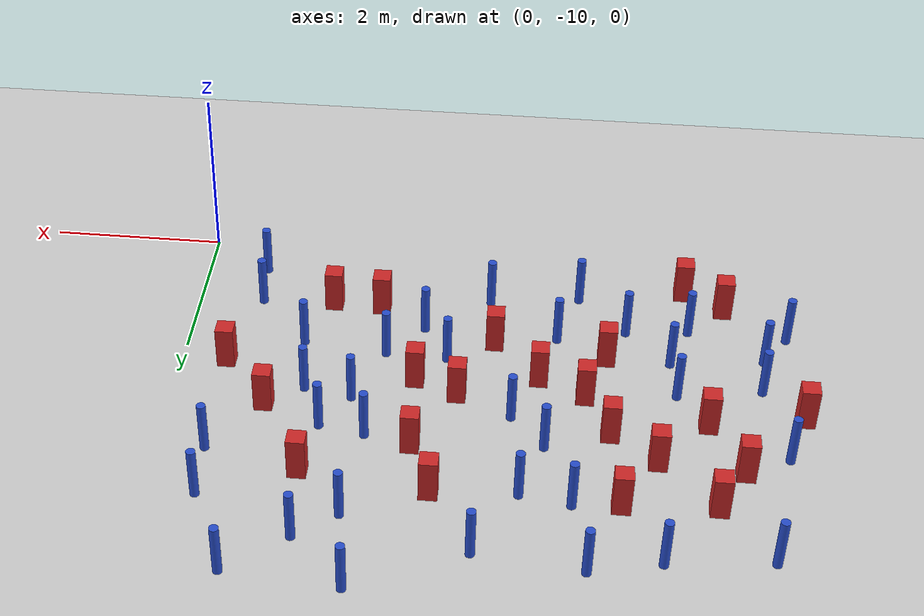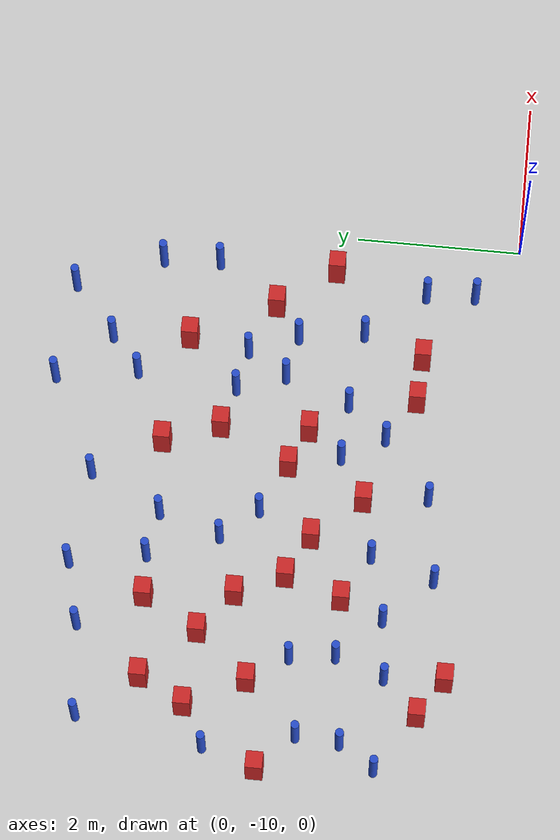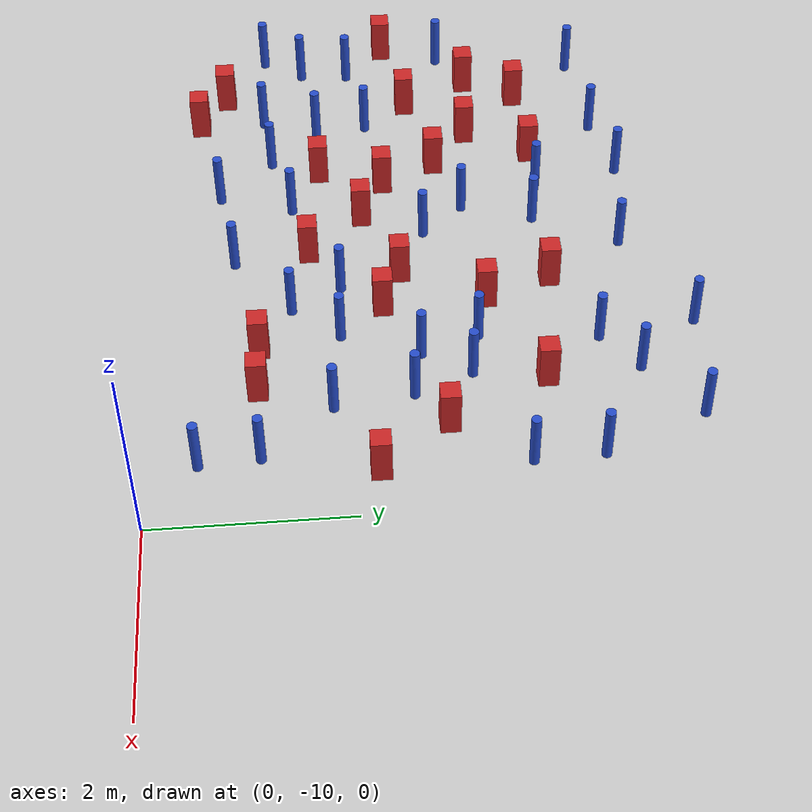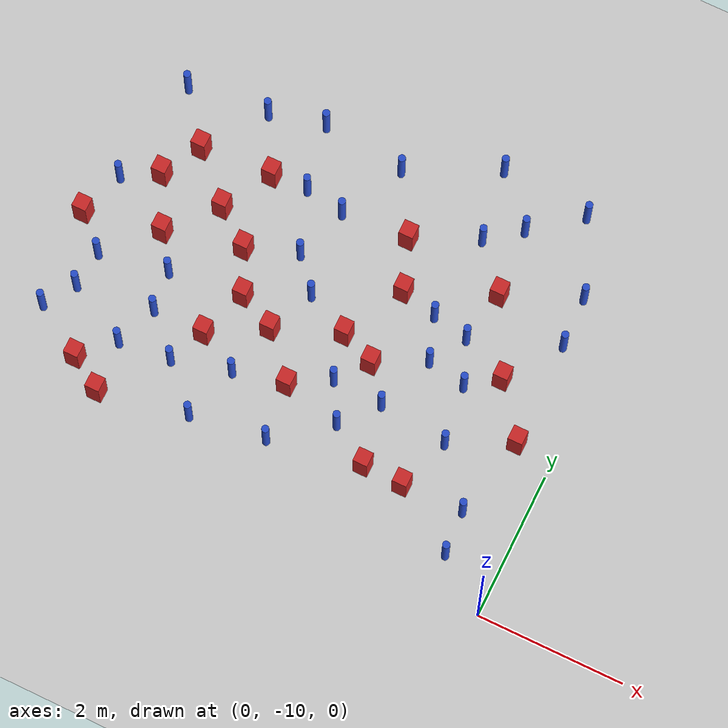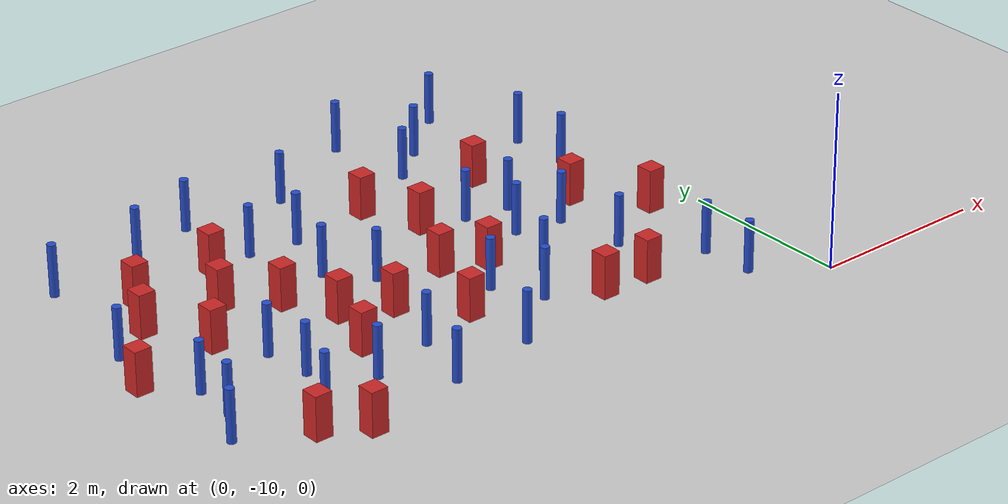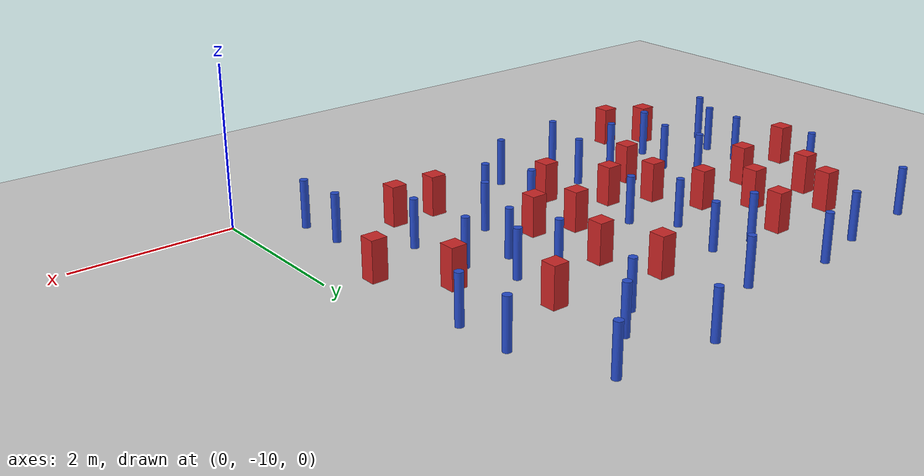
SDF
<sdf version="1.6">
 <world name="default">
  <model name="ground_plane">
   <static>1</static>
   <link name="link">
    <collision name="collision">
     <geometry><plane><normal>0 0 1</normal><size>100 100</size></plane></geometry>
     <surface><friction><ode><mu>100</mu><mu2>50</mu2></ode></friction></surface>
    </collision>
    <visual name="visual">
     <cast_shadows>0</cast_shadows>
     <geometry><plane><normal>0 0 1</normal><size>100 100</size></plane></geometry>
     <material>
      <ambient>1.0 1.0 1.0 1.0</ambient>
      <diffuse>0.8 0.8 0.8 1.0</diffuse>
      <specular>0.01 0.01 0.01 1.000000</specular>
     </material>
    </visual>
   </link>
  </model>
  <model name="square_post_obstacle4">
   <static>true</static>
   <pose>-2.685615217 -6.57738315095 1.91545236811e-07 -7.35059704564e-06 1.12565212e-07 2.39332434364e-05</pose>
   <link name="link">
    <pose>0 0 0.25 0 -0 0</pose>
    <inertial>
     <mass>100</mass>
     <inertia>
      <ixx>0.166667</ixx>
      <ixy>0</ixy>
      <ixz>0</ixz>
      <iyy>0.166667</iyy>
      <iyz>0</iyz>
      <izz>0.166667</izz>
     </inertia>
    </inertial>
    <collision name="collision"><geometry><box><size>.2 .2 .5</size></box></geometry></collision>
    <visual name="visual">
     <geometry><box><size>.2 .2 .5</size></box></geometry>
     <material>
      <script><name>Gazebo/Red</name><uri>file://media/materials/scripts/gazebo.material</uri></script>
     </material>
    </visual>
   </link>
  </model>
  <model name="pole_obstacle7">
   <static>true</static>
   <pose>-5.67325957505 -8.79444779382 7.38925637345e-09 -8.471706928e-08 1.24976765081e-08 -1.74513093015e-07</pose>
   <link name="link">
    <pose>0 0 0.3 0 -0 0</pose>
    <inertial>
     <mass>1</mass>
     <inertia><ixx>0.145833</ixx><ixy>0</ixy><ixz>0</ixz><iyy>0.145833</iyy><iyz>0</iyz><izz>0.125</izz></inertia>
    </inertial>
    <collision name="collision">
     <geometry><cylinder><radius>0.05</radius><length>.6</length></cylinder></geometry>
    </collision>
    <visual name="visual">
     <geometry><cylinder><radius>0.05</radius><length>.6</length></cylinder></geometry>
     <material>
      <script><name>Gazebo/Blue</name><uri>file://media/materials/scripts/gazebo.material</uri></script>
     </material>
    </visual>
   </link>
  </model>
  <model name="pole_obstacle9">
   <static>true</static>
   <pose>-3.39660632281 -9.13306367596 7.38925637345e-09 -8.47170692793e-08 1.24976764408e-08 -1.74513093041e-07</pose>
   <link name="link">
    <pose>0 0 0.3 0 -0 0</pose>
    <inertial>
     <mass>1</mass>
     <inertia><ixx>0.145833</ixx><ixy>0</ixy><ixz>0</ixz><iyy>0.145833</iyy><iyz>0</iyz><izz>0.125</izz></inertia>
    </inertial>
    <collision name="collision">
     <geometry><cylinder><radius>0.05</radius><length>.6</length></cylinder></geometry>
    </collision>
    <visual name="visual">
     <geometry><cylinder><radius>0.05</radius><length>.6</length></cylinder></geometry>
     <material>
      <script><name>Gazebo/Blue</name><uri>file://media/materials/scripts/gazebo.material</uri></script>
     </material>
    </visual>
   </link>
  </model>
  <model name="square_post_obstacle17">
   <static>true</static>
   <pose>-5.90727312958 -5.95352216469 1.91545236811e-07 -7.35059704564e-06 1.12565212e-07 2.39332434364e-05</pose>
   <link name="link">
    <pose>0 0 0.25 0 -0 0</pose>
    <inertial>
     <mass>100</mass>
     <inertia>
      <ixx>0.166667</ixx>
      <ixy>0</ixy>
      <ixz>0</ixz>
      <iyy>0.166667</iyy>
      <iyz>0</iyz>
      <izz>0.166667</izz>
     </inertia>
    </inertial>
    <collision name="collision"><geometry><box><size>.2 .2 .5</size></box></geometry></collision>
    <visual name="visual">
     <geometry><box><size>.2 .2 .5</size></box></geometry>
     <material>
      <script><name>Gazebo/Red</name><uri>file://media/materials/scripts/gazebo.material</uri></script>
     </material>
    </visual>
   </link>
  </model>
  <model name="square_post_obstacle21">
   <static>true</static>
   <pose>-6.20504115553 -6.49994313246 1.91545236811e-07 -7.35059704564e-06 1.12565212e-07 2.39332434364e-05</pose>
   <link name="link">
    <pose>0 0 0.25 0 -0 0</pose>
    <inertial>
     <mass>100</mass>
     <inertia>
      <ixx>0.166667</ixx>
      <ixy>0</ixy>
      <ixz>0</ixz>
      <iyy>0.166667</iyy>
      <iyz>0</iyz>
      <izz>0.166667</izz>
     </inertia>
    </inertial>
    <collision name="collision"><geometry><box><size>.2 .2 .5</size></box></geometry></collision>
    <visual name="visual">
     <geometry><box><size>.2 .2 .5</size></box></geometry>
     <material>
      <script><name>Gazebo/Red</name><uri>file://media/materials/scripts/gazebo.material</uri></script>
     </material>
    </visual>
   </link>
  </model>
  <model name="pole_obstacle17">
   <static>true</static>
   <pose>-3.86469299405 -5.96399672373 7.38925637345e-09 -8.47170692794e-08 1.24976764468e-08 -1.7451309304e-07</pose>
   <link name="link">
    <pose>0 0 0.3 0 -0 0</pose>
    <inertial>
     <mass>1</mass>
     <inertia><ixx>0.145833</ixx><ixy>0</ixy><ixz>0</ixz><iyy>0.145833</iyy><iyz>0</iyz><izz>0.125</izz></inertia>
    </inertial>
    <collision name="collision">
     <geometry><cylinder><radius>0.05</radius><length>.6</length></cylinder></geometry>
    </collision>
    <visual name="visual">
     <geometry><cylinder><radius>0.05</radius><length>.6</length></cylinder></geometry>
     <material>
      <script><name>Gazebo/Blue</name><uri>file://media/materials/scripts/gazebo.material</uri></script>
     </material>
    </visual>
   </link>
  </model>
  <model name="square_post_obstacle32">
   <static>true</static>
   <pose>-4.79660559001 -6.95460311678 1.91545236811e-07 -7.35059704564e-06 1.12565212e-07 2.39332434364e-05</pose>
   <link name="link">
    <pose>0 0 0.25 0 -0 0</pose>
    <inertial>
     <mass>100</mass>
     <inertia>
      <ixx>0.166667</ixx>
      <ixy>0</ixy>
      <ixz>0</ixz>
      <iyy>0.166667</iyy>
      <iyz>0</iyz>
      <izz>0.166667</izz>
     </inertia>
    </inertial>
    <collision name="collision"><geometry><box><size>.2 .2 .5</size></box></geometry></collision>
    <visual name="visual">
     <geometry><box><size>.2 .2 .5</size></box></geometry>
     <material>
      <script><name>Gazebo/Red</name><uri>file://media/materials/scripts/gazebo.material</uri></script>
     </material>
    </visual>
   </link>
  </model>
  <model name="square_post_obstacle33">
   <static>true</static>
   <pose>-4.74469643755 -8.20914428966 1.91545236811e-07 -7.35059704564e-06 1.12565212e-07 2.39332434364e-05</pose>
   <link name="link">
    <pose>0 0 0.25 0 -0 0</pose>
    <inertial>
     <mass>100</mass>
     <inertia>
      <ixx>0.166667</ixx>
      <ixy>0</ixy>
      <ixz>0</ixz>
      <iyy>0.166667</iyy>
      <iyz>0</iyz>
      <izz>0.166667</izz>
     </inertia>
    </inertial>
    <collision name="collision"><geometry><box><size>.2 .2 .5</size></box></geometry></collision>
    <visual name="visual">
     <geometry><box><size>.2 .2 .5</size></box></geometry>
     <material>
      <script><name>Gazebo/Red</name><uri>file://media/materials/scripts/gazebo.material</uri></script>
     </material>
    </visual>
   </link>
  </model>
  <model name="pole_obstacle30">
   <static>true</static>
   <pose>-2.67272875391 -8.56200694181 7.38925637345e-09 -8.47170692793e-08 1.24976764408e-08 -1.74513093041e-07</pose>
   <link name="link">
    <pose>0 0 0.3 0 -0 0</pose>
    <inertial>
     <mass>1</mass>
     <inertia><ixx>0.145833</ixx><ixy>0</ixy><ixz>0</ixz><iyy>0.145833</iyy><iyz>0</iyz><izz>0.125</izz></inertia>
    </inertial>
    <collision name="collision">
     <geometry><cylinder><radius>0.05</radius><length>.6</length></cylinder></geometry>
    </collision>
    <visual name="visual">
     <geometry><cylinder><radius>0.05</radius><length>.6</length></cylinder></geometry>
     <material>
      <script><name>Gazebo/Blue</name><uri>file://media/materials/scripts/gazebo.material</uri></script>
     </material>
    </visual>
   </link>
  </model>
  <model name="pole_obstacle39">
   <static>true</static>
   <pose>-0.553550054697 -5.64953294162 7.38925637345e-09 -8.471706928e-08 1.24976765086e-08 -1.74513093015e-07</pose>
   <link name="link">
    <pose>0 0 0.3 0 -0 0</pose>
    <inertial>
     <mass>1</mass>
     <inertia><ixx>0.145833</ixx><ixy>0</ixy><ixz>0</ixz><iyy>0.145833</iyy><iyz>0</iyz><izz>0.125</izz></inertia>
    </inertial>
    <collision name="collision">
     <geometry><cylinder><radius>0.05</radius><length>.6</length></cylinder></geometry>
    </collision>
    <visual name="visual">
     <geometry><cylinder><radius>0.05</radius><length>.6</length></cylinder></geometry>
     <material>
      <script><name>Gazebo/Blue</name><uri>file://media/materials/scripts/gazebo.material</uri></script>
     </material>
    </visual>
   </link>
  </model>
  <model name="pole_obstacle43">
   <static>true</static>
   <pose>-0.524013372883 -6.34227427434 7.38925637345e-09 -8.471706928e-08 1.24976765117e-08 -1.74513093013e-07</pose>
   <link name="link">
    <pose>0 0 0.3 0 -0 0</pose>
    <inertial>
     <mass>1</mass>
     <inertia><ixx>0.145833</ixx><ixy>0</ixy><ixz>0</ixz><iyy>0.145833</iyy><iyz>0</iyz><izz>0.125</izz></inertia>
    </inertial>
    <collision name="collision">
     <geometry><cylinder><radius>0.05</radius><length>.6</length></cylinder></geometry>
    </collision>
    <visual name="visual">
     <geometry><cylinder><radius>0.05</radius><length>.6</length></cylinder></geometry>
     <material>
      <script><name>Gazebo/Blue</name><uri>file://media/materials/scripts/gazebo.material</uri></script>
     </material>
    </visual>
   </link>
  </model>
  <model name="pole_obstacle44">
   <static>true</static>
   <pose>-6.44409843648 -5.26554828642 7.38925637345e-09 -8.47170692796e-08 1.24976764786e-08 -1.74513093032e-07</pose>
   <link name="link">
    <pose>0 0 0.3 0 -0 0</pose>
    <inertial>
     <mass>1</mass>
     <inertia><ixx>0.145833</ixx><ixy>0</ixy><ixz>0</ixz><iyy>0.145833</iyy><iyz>0</iyz><izz>0.125</izz></inertia>
    </inertial>
    <collision name="collision">
     <geometry><cylinder><radius>0.05</radius><length>.6</length></cylinder></geometry>
    </collision>
    <visual name="visual">
     <geometry><cylinder><radius>0.05</radius><length>.6</length></cylinder></geometry>
     <material>
      <script><name>Gazebo/Blue</name><uri>file://media/materials/scripts/gazebo.material</uri></script>
     </material>
    </visual>
   </link>
  </model>
  <model name="square_post_obstacle54">
   <static>true</static>
   <pose>-4.91477267007 -5.89454591117 1.91545236811e-07 -7.35059704564e-06 1.12565212e-07 2.39332434364e-05</pose>
   <link name="link">
    <pose>0 0 0.25 0 -0 0</pose>
    <inertial>
     <mass>100</mass>
     <inertia>
      <ixx>0.166667</ixx>
      <ixy>0</ixy>
      <ixz>0</ixz>
      <iyy>0.166667</iyy>
      <iyz>0</iyz>
      <izz>0.166667</izz>
     </inertia>
    </inertial>
    <collision name="collision"><geometry><box><size>.2 .2 .5</size></box></geometry></collision>
    <visual name="visual">
     <geometry><box><size>.2 .2 .5</size></box></geometry>
     <material>
      <script><name>Gazebo/Red</name><uri>file://media/materials/scripts/gazebo.material</uri></script>
     </material>
    </visual>
   </link>
  </model>
  <model name="square_post_obstacle55">
   <static>true</static>
   <pose>-1.03799354167 -7.09094014084 1.91545236811e-07 -7.35059704564e-06 1.12565212e-07 2.39332434364e-05</pose>
   <link name="link">
    <pose>0 0 0.25 0 -0 0</pose>
    <inertial>
     <mass>100</mass>
     <inertia>
      <ixx>0.166667</ixx>
      <ixy>0</ixy>
      <ixz>0</ixz>
      <iyy>0.166667</iyy>
      <iyz>0</iyz>
      <izz>0.166667</izz>
     </inertia>
    </inertial>
    <collision name="collision"><geometry><box><size>.2 .2 .5</size></box></geometry></collision>
    <visual name="visual">
     <geometry><box><size>.2 .2 .5</size></box></geometry>
     <material>
      <script><name>Gazebo/Red</name><uri>file://media/materials/scripts/gazebo.material</uri></script>
     </material>
    </visual>
   </link>
  </model>
  <model name="square_post_obstacle61">
   <static>true</static>
   <pose>-2.64225316616 -7.63727702966 1.91545236811e-07 -7.35059704564e-06 1.12565212e-07 2.39332434364e-05</pose>
   <link name="link">
    <pose>0 0 0.25 0 -0 0</pose>
    <inertial>
     <mass>100</mass>
     <inertia>
      <ixx>0.166667</ixx>
      <ixy>0</ixy>
      <ixz>0</ixz>
      <iyy>0.166667</iyy>
      <iyz>0</iyz>
      <izz>0.166667</izz>
     </inertia>
    </inertial>
    <collision name="collision"><geometry><box><size>.2 .2 .5</size></box></geometry></collision>
    <visual name="visual">
     <geometry><box><size>.2 .2 .5</size></box></geometry>
     <material>
      <script><name>Gazebo/Red</name><uri>file://media/materials/scripts/gazebo.material</uri></script>
     </material>
    </visual>
   </link>
  </model>
  <model name="pole_obstacle63">
   <static>true</static>
   <pose>-4.42231945581 -9.27846044758 7.38925637345e-09 -8.471706928e-08 1.24976765081e-08 -1.74513093015e-07</pose>
   <link name="link">
    <pose>0 0 0.3 0 -0 0</pose>
    <inertial>
     <mass>1</mass>
     <inertia><ixx>0.145833</ixx><ixy>0</ixy><ixz>0</ixz><iyy>0.145833</iyy><iyz>0</iyz><izz>0.125</izz></inertia>
    </inertial>
    <collision name="collision">
     <geometry><cylinder><radius>0.05</radius><length>.6</length></cylinder></geometry>
    </collision>
    <visual name="visual">
     <geometry><cylinder><radius>0.05</radius><length>.6</length></cylinder></geometry>
     <material>
      <script><name>Gazebo/Blue</name><uri>file://media/materials/scripts/gazebo.material</uri></script>
     </material>
    </visual>
   </link>
  </model>
  <model name="pole_obstacle68">
   <static>true</static>
   <pose>-4.57803799011 -4.96200892078 7.38925637345e-09 -8.47170692796e-08 1.24976764786e-08 -1.74513093032e-07</pose>
   <link name="link">
    <pose>0 0 0.3 0 -0 0</pose>
    <inertial>
     <mass>1</mass>
     <inertia><ixx>0.145833</ixx><ixy>0</ixy><ixz>0</ixz><iyy>0.145833</iyy><iyz>0</iyz><izz>0.125</izz></inertia>
    </inertial>
    <collision name="collision">
     <geometry><cylinder><radius>0.05</radius><length>.6</length></cylinder></geometry>
    </collision>
    <visual name="visual">
     <geometry><cylinder><radius>0.05</radius><length>.6</length></cylinder></geometry>
     <material>
      <script><name>Gazebo/Blue</name><uri>file://media/materials/scripts/gazebo.material</uri></script>
     </material>
    </visual>
   </link>
  </model>
  <model name="square_post_obstacle72">
   <static>true</static>
   <pose>-5.84572006621 -7.20224169202 1.91545236811e-07 -7.35059704564e-06 1.12565212e-07 2.39332434364e-05</pose>
   <link name="link">
    <pose>0 0 0.25 0 -0 0</pose>
    <inertial>
     <mass>100</mass>
     <inertia>
      <ixx>0.166667</ixx>
      <ixy>0</ixy>
      <ixz>0</ixz>
      <iyy>0.166667</iyy>
      <iyz>0</iyz>
      <izz>0.166667</izz>
     </inertia>
    </inertial>
    <collision name="collision"><geometry><box><size>.2 .2 .5</size></box></geometry></collision>
    <visual name="visual">
     <geometry><box><size>.2 .2 .5</size></box></geometry>
     <material>
      <script><name>Gazebo/Red</name><uri>file://media/materials/scripts/gazebo.material</uri></script>
     </material>
    </visual>
   </link>
  </model>
  <model name="square_post_obstacle73">
   <static>true</static>
   <pose>-4.00520511237 -7.78491898159 1.91545236811e-07 -7.35059704564e-06 1.12565212e-07 2.39332434364e-05</pose>
   <link name="link">
    <pose>0 0 0.25 0 -0 0</pose>
    <inertial>
     <mass>100</mass>
     <inertia>
      <ixx>0.166667</ixx>
      <ixy>0</ixy>
      <ixz>0</ixz>
      <iyy>0.166667</iyy>
      <iyz>0</iyz>
      <izz>0.166667</izz>
     </inertia>
    </inertial>
    <collision name="collision"><geometry><box><size>.2 .2 .5</size></box></geometry></collision>
    <visual name="visual">
     <geometry><box><size>.2 .2 .5</size></box></geometry>
     <material>
      <script><name>Gazebo/Red</name><uri>file://media/materials/scripts/gazebo.material</uri></script>
     </material>
    </visual>
   </link>
  </model>
  <model name="pole_obstacle76">
   <static>true</static>
   <pose>-5.33359625989 -5.14561913238 7.38925637345e-09 -8.47170692796e-08 1.24976764786e-08 -1.74513093032e-07</pose>
   <link name="link">
    <pose>0 0 0.3 0 -0 0</pose>
    <inertial>
     <mass>1</mass>
     <inertia><ixx>0.145833</ixx><ixy>0</ixy><ixz>0</ixz><iyy>0.145833</iyy><iyz>0</iyz><izz>0.125</izz></inertia>
    </inertial>
    <collision name="collision">
     <geometry><cylinder><radius>0.05</radius><length>.6</length></cylinder></geometry>
    </collision>
    <visual name="visual">
     <geometry><cylinder><radius>0.05</radius><length>.6</length></cylinder></geometry>
     <material>
      <script><name>Gazebo/Blue</name><uri>file://media/materials/scripts/gazebo.material</uri></script>
     </material>
    </visual>
   </link>
  </model>
  <model name="pole_obstacle79">
   <static>true</static>
   <pose>-3.72798215437 -7.14431635599 7.38925637345e-09 -8.47170692798e-08 1.24976765033e-08 -1.74513093019e-07</pose>
   <link name="link">
    <pose>0 0 0.3 0 -0 0</pose>
    <inertial>
     <mass>1</mass>
     <inertia><ixx>0.145833</ixx><ixy>0</ixy><ixz>0</ixz><iyy>0.145833</iyy><iyz>0</iyz><izz>0.125</izz></inertia>
    </inertial>
    <collision name="collision">
     <geometry><cylinder><radius>0.05</radius><length>.6</length></cylinder></geometry>
    </collision>
    <visual name="visual">
     <geometry><cylinder><radius>0.05</radius><length>.6</length></cylinder></geometry>
     <material>
      <script><name>Gazebo/Blue</name><uri>file://media/materials/scripts/gazebo.material</uri></script>
     </material>
    </visual>
   </link>
  </model>
  <model name="pole_obstacle86">
   <static>true</static>
   <pose>-6.46211403101 -7.83338449852 7.38925637345e-09 -8.47170692796e-08 1.24976764786e-08 -1.74513093032e-07</pose>
   <link name="link">
    <pose>0 0 0.3 0 -0 0</pose>
    <inertial>
     <mass>1</mass>
     <inertia><ixx>0.145833</ixx><ixy>0</ixy><ixz>0</ixz><iyy>0.145833</iyy><iyz>0</iyz><izz>0.125</izz></inertia>
    </inertial>
    <collision name="collision">
     <geometry><cylinder><radius>0.05</radius><length>.6</length></cylinder></geometry>
    </collision>
    <visual name="visual">
     <geometry><cylinder><radius>0.05</radius><length>.6</length></cylinder></geometry>
     <material>
      <script><name>Gazebo/Blue</name><uri>file://media/materials/scripts/gazebo.material</uri></script>
     </material>
    </visual>
   </link>
  </model>
  <model name="pole_obstacle87">
   <static>true</static>
   <pose>-0.984237780173 -4.62007494867 7.38925637345e-09 -8.47170692799e-08 1.2497676509e-08 -1.74513093015e-07</pose>
   <link name="link">
    <pose>0 0 0.3 0 -0 0</pose>
    <inertial>
     <mass>1</mass>
     <inertia><ixx>0.145833</ixx><ixy>0</ixy><ixz>0</ixz><iyy>0.145833</iyy><iyz>0</iyz><izz>0.125</izz></inertia>
    </inertial>
    <collision name="collision">
     <geometry><cylinder><radius>0.05</radius><length>.6</length></cylinder></geometry>
    </collision>
    <visual name="visual">
     <geometry><cylinder><radius>0.05</radius><length>.6</length></cylinder></geometry>
     <material>
      <script><name>Gazebo/Blue</name><uri>file://media/materials/scripts/gazebo.material</uri></script>
     </material>
    </visual>
   </link>
  </model>
  <model name="pole_obstacle88">
   <static>true</static>
   <pose>-6.68618544151 -6.77003772279 7.38925637345e-09 -8.47170692796e-08 1.24976764786e-08 -1.74513093032e-07</pose>
   <link name="link">
    <pose>0 0 0.3 0 -0 0</pose>
    <inertial>
     <mass>1</mass>
     <inertia><ixx>0.145833</ixx><ixy>0</ixy><ixz>0</ixz><iyy>0.145833</iyy><iyz>0</iyz><izz>0.125</izz></inertia>
    </inertial>
    <collision name="collision">
     <geometry><cylinder><radius>0.05</radius><length>.6</length></cylinder></geometry>
    </collision>
    <visual name="visual">
     <geometry><cylinder><radius>0.05</radius><length>.6</length></cylinder></geometry>
     <material>
      <script><name>Gazebo/Blue</name><uri>file://media/materials/scripts/gazebo.material</uri></script>
     </material>
    </visual>
   </link>
  </model>
  <model name="pole_obstacle93">
   <static>true</static>
   <pose>-4.41151276298 -5.86760498935 7.38925637345e-09 -8.47170692796e-08 1.24976764786e-08 -1.74513093032e-07</pose>
   <link name="link">
    <pose>0 0 0.3 0 -0 0</pose>
    <inertial>
     <mass>1</mass>
     <inertia><ixx>0.145833</ixx><ixy>0</ixy><ixz>0</ixz><iyy>0.145833</iyy><iyz>0</iyz><izz>0.125</izz></inertia>
    </inertial>
    <collision name="collision">
     <geometry><cylinder><radius>0.05</radius><length>.6</length></cylinder></geometry>
    </collision>
    <visual name="visual">
     <geometry><cylinder><radius>0.05</radius><length>.6</length></cylinder></geometry>
     <material>
      <script><name>Gazebo/Blue</name><uri>file://media/materials/scripts/gazebo.material</uri></script>
     </material>
    </visual>
   </link>
  </model>
  <model name="pole_obstacle96">
   <static>true</static>
   <pose>-4.1861930386 -8.51785184018 7.38925637345e-09 -8.471706928e-08 1.24976765081e-08 -1.74513093015e-07</pose>
   <link name="link">
    <pose>0 0 0.3 0 -0 0</pose>
    <inertial>
     <mass>1</mass>
     <inertia><ixx>0.145833</ixx><ixy>0</ixy><ixz>0</ixz><iyy>0.145833</iyy><iyz>0</iyz><izz>0.125</izz></inertia>
    </inertial>
    <collision name="collision">
     <geometry><cylinder><radius>0.05</radius><length>.6</length></cylinder></geometry>
    </collision>
    <visual name="visual">
     <geometry><cylinder><radius>0.05</radius><length>.6</length></cylinder></geometry>
     <material>
      <script><name>Gazebo/Blue</name><uri>file://media/materials/scripts/gazebo.material</uri></script>
     </material>
    </visual>
   </link>
  </model>
  <model name="pole_obstacle99">
   <static>true</static>
   <pose>-1.97318279446 -7.29248434458 7.38925637345e-09 -8.47170692799e-08 1.2497676507e-08 -1.74513093016e-07</pose>
   <link name="link">
    <pose>0 0 0.3 0 -0 0</pose>
    <inertial>
     <mass>1</mass>
     <inertia><ixx>0.145833</ixx><ixy>0</ixy><ixz>0</ixz><iyy>0.145833</iyy><iyz>0</iyz><izz>0.125</izz></inertia>
    </inertial>
    <collision name="collision">
     <geometry><cylinder><radius>0.05</radius><length>.6</length></cylinder></geometry>
    </collision>
    <visual name="visual">
     <geometry><cylinder><radius>0.05</radius><length>.6</length></cylinder></geometry>
     <material>
      <script><name>Gazebo/Blue</name><uri>file://media/materials/scripts/gazebo.material</uri></script>
     </material>
    </visual>
   </link>
  </model>
  <model name="pole_obstacle100">
   <static>true</static>
   <pose>-1.6788265179 -6.80851122319 7.38925637345e-09 -8.47170692799e-08 1.24976765033e-08 -1.74513093018e-07</pose>
   <link name="link">
    <pose>0 0 0.3 0 -0 0</pose>
    <inertial>
     <mass>1</mass>
     <inertia><ixx>0.145833</ixx><ixy>0</ixy><ixz>0</ixz><iyy>0.145833</iyy><iyz>0</iyz><izz>0.125</izz></inertia>
    </inertial>
    <collision name="collision">
     <geometry><cylinder><radius>0.05</radius><length>.6</length></cylinder></geometry>
    </collision>
    <visual name="visual">
     <geometry><cylinder><radius>0.05</radius><length>.6</length></cylinder></geometry>
     <material>
      <script><name>Gazebo/Blue</name><uri>file://media/materials/scripts/gazebo.material</uri></script>
     </material>
    </visual>
   </link>
  </model>
  <model name="pole_obstacle101">
   <static>true</static>
   <pose>-6.7832680341 -8.76823065903 7.38925637345e-09 -8.471706928e-08 1.24976765081e-08 -1.74513093015e-07</pose>
   <link name="link">
    <pose>0 0 0.3 0 -0 0</pose>
    <inertial>
     <mass>1</mass>
     <inertia><ixx>0.145833</ixx><ixy>0</ixy><ixz>0</ixz><iyy>0.145833</iyy><iyz>0</iyz><izz>0.125</izz></inertia>
    </inertial>
    <collision name="collision">
     <geometry><cylinder><radius>0.05</radius><length>.6</length></cylinder></geometry>
    </collision>
    <visual name="visual">
     <geometry><cylinder><radius>0.05</radius><length>.6</length></cylinder></geometry>
     <material>
      <script><name>Gazebo/Blue</name><uri>file://media/materials/scripts/gazebo.material</uri></script>
     </material>
    </visual>
   </link>
  </model>
  <model name="pole_obstacle106">
   <static>true</static>
   <pose>-1.32890630405 -8.19093443183 7.38925637345e-09 -8.47170692798e-08 1.24976764881e-08 -1.74513093027e-07</pose>
   <link name="link">
    <pose>0 0 0.3 0 -0 0</pose>
    <inertial>
     <mass>1</mass>
     <inertia><ixx>0.145833</ixx><ixy>0</ixy><ixz>0</ixz><iyy>0.145833</iyy><iyz>0</iyz><izz>0.125</izz></inertia>
    </inertial>
    <collision name="collision">
     <geometry><cylinder><radius>0.05</radius><length>.6</length></cylinder></geometry>
    </collision>
    <visual name="visual">
     <geometry><cylinder><radius>0.05</radius><length>.6</length></cylinder></geometry>
     <material>
      <script><name>Gazebo/Blue</name><uri>file://media/materials/scripts/gazebo.material</uri></script>
     </material>
    </visual>
   </link>
  </model>
  <model name="pole_obstacle126">
   <static>true</static>
   <pose>-1.62598377649 -5.14442891262 7.38925637345e-09 -8.47170692799e-08 1.24976765033e-08 -1.74513093018e-07</pose>
   <link name="link">
    <pose>0 0 0.3 0 -0 0</pose>
    <inertial>
     <mass>1</mass>
     <inertia><ixx>0.145833</ixx><ixy>0</ixy><ixz>0</ixz><iyy>0.145833</iyy><iyz>0</iyz><izz>0.125</izz></inertia>
    </inertial>
    <collision name="collision">
     <geometry><cylinder><radius>0.05</radius><length>.6</length></cylinder></geometry>
    </collision>
    <visual name="visual">
     <geometry><cylinder><radius>0.05</radius><length>.6</length></cylinder></geometry>
     <material>
      <script><name>Gazebo/Blue</name><uri>file://media/materials/scripts/gazebo.material</uri></script>
     </material>
    </visual>
   </link>
  </model>
  <model name="pole_obstacle132">
   <static>true</static>
   <pose>-2.21930874792 -4.51216955198 7.38925637345e-09 -8.47170692798e-08 1.24976765033e-08 -1.74513093019e-07</pose>
   <link name="link">
    <pose>0 0 0.3 0 -0 0</pose>
    <inertial>
     <mass>1</mass>
     <inertia><ixx>0.145833</ixx><ixy>0</ixy><ixz>0</ixz><iyy>0.145833</iyy><iyz>0</iyz><izz>0.125</izz></inertia>
    </inertial>
    <collision name="collision">
     <geometry><cylinder><radius>0.05</radius><length>.6</length></cylinder></geometry>
    </collision>
    <visual name="visual">
     <geometry><cylinder><radius>0.05</radius><length>.6</length></cylinder></geometry>
     <material>
      <script><name>Gazebo/Blue</name><uri>file://media/materials/scripts/gazebo.material</uri></script>
     </material>
    </visual>
   </link>
  </model>
  <model name="pole_obstacle134">
   <static>true</static>
   <pose>-2.274626731 -8.0820070041 7.38925637345e-09 -8.47170692793e-08 1.24976764408e-08 -1.74513093041e-07</pose>
   <link name="link">
    <pose>0 0 0.3 0 -0 0</pose>
    <inertial>
     <mass>1</mass>
     <inertia><ixx>0.145833</ixx><ixy>0</ixy><ixz>0</ixz><iyy>0.145833</iyy><iyz>0</iyz><izz>0.125</izz></inertia>
    </inertial>
    <collision name="collision">
     <geometry><cylinder><radius>0.05</radius><length>.6</length></cylinder></geometry>
    </collision>
    <visual name="visual">
     <geometry><cylinder><radius>0.05</radius><length>.6</length></cylinder></geometry>
     <material>
      <script><name>Gazebo/Blue</name><uri>file://media/materials/scripts/gazebo.material</uri></script>
     </material>
    </visual>
   </link>
  </model>
  <model name="square_post_obstacle120">
   <static>true</static>
   <pose>-1.55667680776 -6.08424264374 1.91545236811e-07 -7.35059704564e-06 1.12565212e-07 2.39332434364e-05</pose>
   <link name="link">
    <pose>0 0 0.25 0 -0 0</pose>
    <inertial>
     <mass>100</mass>
     <inertia>
      <ixx>0.166667</ixx>
      <ixy>0</ixy>
      <ixz>0</ixz>
      <iyy>0.166667</iyy>
      <iyz>0</iyz>
      <izz>0.166667</izz>
     </inertia>
    </inertial>
    <collision name="collision"><geometry><box><size>.2 .2 .5</size></box></geometry></collision>
    <visual name="visual">
     <geometry><box><size>.2 .2 .5</size></box></geometry>
     <material>
      <script><name>Gazebo/Red</name><uri>file://media/materials/scripts/gazebo.material</uri></script>
     </material>
    </visual>
   </link>
  </model>
  <model name="square_post_obstacle125">
   <static>true</static>
   <pose>-2.14151000533 -8.89527991252 1.91545236811e-07 -7.35059704564e-06 1.12565212e-07 2.39332434364e-05</pose>
   <link name="link">
    <pose>0 0 0.25 0 -0 0</pose>
    <inertial>
     <mass>100</mass>
     <inertia>
      <ixx>0.166667</ixx>
      <ixy>0</ixy>
      <ixz>0</ixz>
      <iyy>0.166667</iyy>
      <iyz>0</iyz>
      <izz>0.166667</izz>
     </inertia>
    </inertial>
    <collision name="collision"><geometry><box><size>.2 .2 .5</size></box></geometry></collision>
    <visual name="visual">
     <geometry><box><size>.2 .2 .5</size></box></geometry>
     <material>
      <script><name>Gazebo/Red</name><uri>file://media/materials/scripts/gazebo.material</uri></script>
     </material>
    </visual>
   </link>
  </model>
  <model name="square_post_obstacle129">
   <static>true</static>
   <pose>-5.63081163488 -9.49611265219 1.91545236811e-07 -7.35059704564e-06 1.12565212e-07 2.39332434364e-05</pose>
   <link name="link">
    <pose>0 0 0.25 0 -0 0</pose>
    <inertial>
     <mass>100</mass>
     <inertia>
      <ixx>0.166667</ixx>
      <ixy>0</ixy>
      <ixz>0</ixz>
      <iyy>0.166667</iyy>
      <iyz>0</iyz>
      <izz>0.166667</izz>
     </inertia>
    </inertial>
    <collision name="collision"><geometry><box><size>.2 .2 .5</size></box></geometry></collision>
    <visual name="visual">
     <geometry><box><size>.2 .2 .5</size></box></geometry>
     <material>
      <script><name>Gazebo/Red</name><uri>file://media/materials/scripts/gazebo.material</uri></script>
     </material>
    </visual>
   </link>
  </model>
  <model name="square_post_obstacle130">
   <static>true</static>
   <pose>-3.11896095834 -7.43216754466 1.91545236811e-07 -7.35059704564e-06 1.12565212e-07 2.39332434364e-05</pose>
   <link name="link">
    <pose>0 0 0.25 0 -0 0</pose>
    <inertial>
     <mass>100</mass>
     <inertia>
      <ixx>0.166667</ixx>
      <ixy>0</ixy>
      <ixz>0</ixz>
      <iyy>0.166667</iyy>
      <iyz>0</iyz>
      <izz>0.166667</izz>
     </inertia>
    </inertial>
    <collision name="collision"><geometry><box><size>.2 .2 .5</size></box></geometry></collision>
    <visual name="visual">
     <geometry><box><size>.2 .2 .5</size></box></geometry>
     <material>
      <script><name>Gazebo/Red</name><uri>file://media/materials/scripts/gazebo.material</uri></script>
     </material>
    </visual>
   </link>
  </model>
  <model name="square_post_obstacle131">
   <static>true</static>
   <pose>-5.29722420502 -6.56875036061 1.91545236811e-07 -7.35059704564e-06 1.12565212e-07 2.39332434364e-05</pose>
   <link name="link">
    <pose>0 0 0.25 0 -0 0</pose>
    <inertial>
     <mass>100</mass>
     <inertia>
      <ixx>0.166667</ixx>
      <ixy>0</ixy>
      <ixz>0</ixz>
      <iyy>0.166667</iyy>
      <iyz>0</iyz>
      <izz>0.166667</izz>
     </inertia>
    </inertial>
    <collision name="collision"><geometry><box><size>.2 .2 .5</size></box></geometry></collision>
    <visual name="visual">
     <geometry><box><size>.2 .2 .5</size></box></geometry>
     <material>
      <script><name>Gazebo/Red</name><uri>file://media/materials/scripts/gazebo.material</uri></script>
     </material>
    </visual>
   </link>
  </model>
  <model name="square_post_obstacle132">
   <static>true</static>
   <pose>-0.507850559264 -7.77966564809 1.91545236811e-07 -7.35059704564e-06 1.12565212e-07 2.39332434364e-05</pose>
   <link name="link">
    <pose>0 0 0.25 0 -0 0</pose>
    <inertial>
     <mass>100</mass>
     <inertia>
      <ixx>0.166667</ixx>
      <ixy>0</ixy>
      <ixz>0</ixz>
      <iyy>0.166667</iyy>
      <iyz>0</iyz>
      <izz>0.166667</izz>
     </inertia>
    </inertial>
    <collision name="collision"><geometry><box><size>.2 .2 .5</size></box></geometry></collision>
    <visual name="visual">
     <geometry><box><size>.2 .2 .5</size></box></geometry>
     <material>
      <script><name>Gazebo/Red</name><uri>file://media/materials/scripts/gazebo.material</uri></script>
     </material>
    </visual>
   </link>
  </model>
  <model name="pole_obstacle146">
   <static>true</static>
   <pose>-5.45995995701 -8.21230616176 7.38925637345e-09 -8.471706928e-08 1.24976765081e-08 -1.74513093015e-07</pose>
   <link name="link">
    <pose>0 0 0.3 0 -0 0</pose>
    <inertial>
     <mass>1</mass>
     <inertia><ixx>0.145833</ixx><ixy>0</ixy><ixz>0</ixz><iyy>0.145833</iyy><iyz>0</iyz><izz>0.125</izz></inertia>
    </inertial>
    <collision name="collision">
     <geometry><cylinder><radius>0.05</radius><length>.6</length></cylinder></geometry>
    </collision>
    <visual name="visual">
     <geometry><cylinder><radius>0.05</radius><length>.6</length></cylinder></geometry>
     <material>
      <script><name>Gazebo/Blue</name><uri>file://media/materials/scripts/gazebo.material</uri></script>
     </material>
    </visual>
   </link>
  </model>
  <model name="pole_obstacle151">
   <static>true</static>
   <pose>-0.742075684619 -8.89908514799 7.38925637345e-09 -8.47170692797e-08 1.249767648e-08 -1.74513093032e-07</pose>
   <link name="link">
    <pose>0 0 0.3 0 -0 0</pose>
    <inertial>
     <mass>1</mass>
     <inertia><ixx>0.145833</ixx><ixy>0</ixy><ixz>0</ixz><iyy>0.145833</iyy><iyz>0</iyz><izz>0.125</izz></inertia>
    </inertial>
    <collision name="collision">
     <geometry><cylinder><radius>0.05</radius><length>.6</length></cylinder></geometry>
    </collision>
    <visual name="visual">
     <geometry><cylinder><radius>0.05</radius><length>.6</length></cylinder></geometry>
     <material>
      <script><name>Gazebo/Blue</name><uri>file://media/materials/scripts/gazebo.material</uri></script>
     </material>
    </visual>
   </link>
  </model>
  <model name="square_post_obstacle156">
   <static>true</static>
   <pose>-3.48476337155 -8.36239506871 1.91545236811e-07 -7.35059704564e-06 1.12565212e-07 2.39332434364e-05</pose>
   <link name="link">
    <pose>0 0 0.25 0 -0 0</pose>
    <inertial>
     <mass>100</mass>
     <inertia>
      <ixx>0.166667</ixx>
      <ixy>0</ixy>
      <ixz>0</ixz>
      <iyy>0.166667</iyy>
      <iyz>0</iyz>
      <izz>0.166667</izz>
     </inertia>
    </inertial>
    <collision name="collision"><geometry><box><size>.2 .2 .5</size></box></geometry></collision>
    <visual name="visual">
     <geometry><box><size>.2 .2 .5</size></box></geometry>
     <material>
      <script><name>Gazebo/Red</name><uri>file://media/materials/scripts/gazebo.material</uri></script>
     </material>
    </visual>
   </link>
  </model>
  <model name="pole_obstacle170">
   <static>true</static>
   <pose>-1.43973117205 -7.39693620825 7.38925637345e-09 -8.47170692799e-08 1.24976765033e-08 -1.74513093018e-07</pose>
   <link name="link">
    <pose>0 0 0.3 0 -0 0</pose>
    <inertial>
     <mass>1</mass>
     <inertia><ixx>0.145833</ixx><ixy>0</ixy><ixz>0</ixz><iyy>0.145833</iyy><iyz>0</iyz><izz>0.125</izz></inertia>
    </inertial>
    <collision name="collision">
     <geometry><cylinder><radius>0.05</radius><length>.6</length></cylinder></geometry>
    </collision>
    <visual name="visual">
     <geometry><cylinder><radius>0.05</radius><length>.6</length></cylinder></geometry>
     <material>
      <script><name>Gazebo/Blue</name><uri>file://media/materials/scripts/gazebo.material</uri></script>
     </material>
    </visual>
   </link>
  </model>
  <model name="pole_obstacle176">
   <static>true</static>
   <pose>-4.10022095719 -6.70573477289 7.38925637345e-09 -8.47170692796e-08 1.24976764786e-08 -1.74513093032e-07</pose>
   <link name="link">
    <pose>0 0 0.3 0 -0 0</pose>
    <inertial>
     <mass>1</mass>
     <inertia><ixx>0.145833</ixx><ixy>0</ixy><ixz>0</ixz><iyy>0.145833</iyy><iyz>0</iyz><izz>0.125</izz></inertia>
    </inertial>
    <collision name="collision">
     <geometry><cylinder><radius>0.05</radius><length>.6</length></cylinder></geometry>
    </collision>
    <visual name="visual">
     <geometry><cylinder><radius>0.05</radius><length>.6</length></cylinder></geometry>
     <material>
      <script><name>Gazebo/Blue</name><uri>file://media/materials/scripts/gazebo.material</uri></script>
     </material>
    </visual>
   </link>
  </model>
  <model name="pole_obstacle184">
   <static>true</static>
   <pose>-2.96445585588 -8.05105538832 7.38925637345e-09 -8.47170692793e-08 1.24976764408e-08 -1.74513093041e-07</pose>
   <link name="link">
    <pose>0 0 0.3 0 -0 0</pose>
    <inertial>
     <mass>1</mass>
     <inertia><ixx>0.145833</ixx><ixy>0</ixy><ixz>0</ixz><iyy>0.145833</iyy><iyz>0</iyz><izz>0.125</izz></inertia>
    </inertial>
    <collision name="collision">
     <geometry><cylinder><radius>0.05</radius><length>.6</length></cylinder></geometry>
    </collision>
    <visual name="visual">
     <geometry><cylinder><radius>0.05</radius><length>.6</length></cylinder></geometry>
     <material>
      <script><name>Gazebo/Blue</name><uri>file://media/materials/scripts/gazebo.material</uri></script>
     </material>
    </visual>
   </link>
  </model>
  <model name="pole_obstacle186">
   <static>true</static>
   <pose>-2.18130850556 -6.70737839407 7.38925637345e-09 -8.47170692798e-08 1.24976765033e-08 -1.74513093019e-07</pose>
   <link name="link">
    <pose>0 0 0.3 0 -0 0</pose>
    <inertial>
     <mass>1</mass>
     <inertia><ixx>0.145833</ixx><ixy>0</ixy><ixz>0</ixz><iyy>0.145833</iyy><iyz>0</iyz><izz>0.125</izz></inertia>
    </inertial>
    <collision name="collision">
     <geometry><cylinder><radius>0.05</radius><length>.6</length></cylinder></geometry>
    </collision>
    <visual name="visual">
     <geometry><cylinder><radius>0.05</radius><length>.6</length></cylinder></geometry>
     <material>
      <script><name>Gazebo/Blue</name><uri>file://media/materials/scripts/gazebo.material</uri></script>
     </material>
    </visual>
   </link>
  </model>
  <model name="square_post_obstacle180">
   <static>true</static>
   <pose>-6.08182023915 -9.20896393241 1.91545236811e-07 -7.35059704564e-06 1.12565212e-07 2.39332434364e-05</pose>
   <link name="link">
    <pose>0 0 0.25 0 -0 0</pose>
    <inertial>
     <mass>100</mass>
     <inertia>
      <ixx>0.166667</ixx>
      <ixy>0</ixy>
      <ixz>0</ixz>
      <iyy>0.166667</iyy>
      <iyz>0</iyz>
      <izz>0.166667</izz>
     </inertia>
    </inertial>
    <collision name="collision"><geometry><box><size>.2 .2 .5</size></box></geometry></collision>
    <visual name="visual">
     <geometry><box><size>.2 .2 .5</size></box></geometry>
     <material>
      <script><name>Gazebo/Red</name><uri>file://media/materials/scripts/gazebo.material</uri></script>
     </material>
    </visual>
   </link>
  </model>
  <model name="square_post_obstacle188">
   <static>true</static>
   <pose>-1.58218932078 -8.9171071676 1.91545236811e-07 -7.35059704564e-06 1.12565212e-07 2.39332434364e-05</pose>
   <link name="link">
    <pose>0 0 0.25 0 -0 0</pose>
    <inertial>
     <mass>100</mass>
     <inertia>
      <ixx>0.166667</ixx>
      <ixy>0</ixy>
      <ixz>0</ixz>
      <iyy>0.166667</iyy>
      <iyz>0</iyz>
      <izz>0.166667</izz>
     </inertia>
    </inertial>
    <collision name="collision"><geometry><box><size>.2 .2 .5</size></box></geometry></collision>
    <visual name="visual">
     <geometry><box><size>.2 .2 .5</size></box></geometry>
     <material>
      <script><name>Gazebo/Red</name><uri>file://media/materials/scripts/gazebo.material</uri></script>
     </material>
    </visual>
   </link>
  </model>
  <model name="pole_obstacle196">
   <static>true</static>
   <pose>-6.50763700257 -8.34963476528 7.38925637345e-09 -8.471706928e-08 1.24976765081e-08 -1.74513093015e-07</pose>
   <link name="link">
    <pose>0 0 0.3 0 -0 0</pose>
    <inertial>
     <mass>1</mass>
     <inertia><ixx>0.145833</ixx><ixy>0</ixy><ixz>0</ixz><iyy>0.145833</iyy><iyz>0</iyz><izz>0.125</izz></inertia>
    </inertial>
    <collision name="collision">
     <geometry><cylinder><radius>0.05</radius><length>.6</length></cylinder></geometry>
    </collision>
    <visual name="visual">
     <geometry><cylinder><radius>0.05</radius><length>.6</length></cylinder></geometry>
     <material>
      <script><name>Gazebo/Blue</name><uri>file://media/materials/scripts/gazebo.material</uri></script>
     </material>
    </visual>
   </link>
  </model>
  <model name="square_post_obstacle204">
   <static>true</static>
   <pose>-4.51911039489 -7.53090258426 1.91545236811e-07 -7.35059704564e-06 1.12565212e-07 2.39332434364e-05</pose>
   <link name="link">
    <pose>0 0 0.25 0 -0 0</pose>
    <inertial>
     <mass>100</mass>
     <inertia>
      <ixx>0.166667</ixx>
      <ixy>0</ixy>
      <ixz>0</ixz>
      <iyy>0.166667</iyy>
      <iyz>0</iyz>
      <izz>0.166667</izz>
     </inertia>
    </inertial>
    <collision name="collision"><geometry><box><size>.2 .2 .5</size></box></geometry></collision>
    <visual name="visual">
     <geometry><box><size>.2 .2 .5</size></box></geometry>
     <material>
      <script><name>Gazebo/Red</name><uri>file://media/materials/scripts/gazebo.material</uri></script>
     </material>
    </visual>
   </link>
  </model>
  <model name="pole_obstacle200">
   <static>true</static>
   <pose>-3.42632378019 -5.09677453795 7.38925637345e-09 -8.47170692798e-08 1.24976765033e-08 -1.74513093019e-07</pose>
   <link name="link">
    <pose>0 0 0.3 0 -0 0</pose>
    <inertial>
     <mass>1</mass>
     <inertia><ixx>0.145833</ixx><ixy>0</ixy><ixz>0</ixz><iyy>0.145833</iyy><iyz>0</iyz><izz>0.125</izz></inertia>
    </inertial>
    <collision name="collision">
     <geometry><cylinder><radius>0.05</radius><length>.6</length></cylinder></geometry>
    </collision>
    <visual name="visual">
     <geometry><cylinder><radius>0.05</radius><length>.6</length></cylinder></geometry>
     <material>
      <script><name>Gazebo/Blue</name><uri>file://media/materials/scripts/gazebo.material</uri></script>
     </material>
    </visual>
   </link>
  </model>
  <model name="pole_obstacle206">
   <static>true</static>
   <pose>-4.96486789588 -8.71975387449 7.38925637345e-09 -8.471706928e-08 1.24976765081e-08 -1.74513093015e-07</pose>
   <link name="link">
    <pose>0 0 0.3 0 -0 0</pose>
    <inertial>
     <mass>1</mass>
     <inertia><ixx>0.145833</ixx><ixy>0</ixy><ixz>0</ixz><iyy>0.145833</iyy><iyz>0</iyz><izz>0.125</izz></inertia>
    </inertial>
    <collision name="collision">
     <geometry><cylinder><radius>0.05</radius><length>.6</length></cylinder></geometry>
    </collision>
    <visual name="visual">
     <geometry><cylinder><radius>0.05</radius><length>.6</length></cylinder></geometry>
     <material>
      <script><name>Gazebo/Blue</name><uri>file://media/materials/scripts/gazebo.material</uri></script>
     </material>
    </visual>
   </link>
  </model>
  <model name="pole_obstacle208">
   <static>true</static>
   <pose>-0.697655591259 -9.49470461109 7.38925637345e-09 -8.47170692797e-08 1.249767648e-08 -1.74513093032e-07</pose>
   <link name="link">
    <pose>0 0 0.3 0 -0 0</pose>
    <inertial>
     <mass>1</mass>
     <inertia><ixx>0.145833</ixx><ixy>0</ixy><ixz>0</ixz><iyy>0.145833</iyy><iyz>0</iyz><izz>0.125</izz></inertia>
    </inertial>
    <collision name="collision">
     <geometry><cylinder><radius>0.05</radius><length>.6</length></cylinder></geometry>
    </collision>
    <visual name="visual">
     <geometry><cylinder><radius>0.05</radius><length>.6</length></cylinder></geometry>
     <material>
      <script><name>Gazebo/Blue</name><uri>file://media/materials/scripts/gazebo.material</uri></script>
     </material>
    </visual>
   </link>
  </model>
  <model name="pole_obstacle213">
   <static>true</static>
   <pose>-2.06990263559 -5.49976108738 7.38925637345e-09 -8.47170692798e-08 1.24976765033e-08 -1.74513093019e-07</pose>
   <link name="link">
    <pose>0 0 0.3 0 -0 0</pose>
    <inertial>
     <mass>1</mass>
     <inertia><ixx>0.145833</ixx><ixy>0</ixy><ixz>0</ixz><iyy>0.145833</iyy><iyz>0</iyz><izz>0.125</izz></inertia>
    </inertial>
    <collision name="collision">
     <geometry><cylinder><radius>0.05</radius><length>.6</length></cylinder></geometry>
    </collision>
    <visual name="visual">
     <geometry><cylinder><radius>0.05</radius><length>.6</length></cylinder></geometry>
     <material>
      <script><name>Gazebo/Blue</name><uri>file://media/materials/scripts/gazebo.material</uri></script>
     </material>
    </visual>
   </link>
  </model>
  <model name="pole_obstacle221">
   <static>true</static>
   <pose>-5.52180699016 -7.66833639867 7.38925637345e-09 -8.47170692796e-08 1.24976764786e-08 -1.74513093032e-07</pose>
   <link name="link">
    <pose>0 0 0.3 0 -0 0</pose>
    <inertial>
     <mass>1</mass>
     <inertia><ixx>0.145833</ixx><ixy>0</ixy><ixz>0</ixz><iyy>0.145833</iyy><iyz>0</iyz><izz>0.125</izz></inertia>
    </inertial>
    <collision name="collision">
     <geometry><cylinder><radius>0.05</radius><length>.6</length></cylinder></geometry>
    </collision>
    <visual name="visual">
     <geometry><cylinder><radius>0.05</radius><length>.6</length></cylinder></geometry>
     <material>
      <script><name>Gazebo/Blue</name><uri>file://media/materials/scripts/gazebo.material</uri></script>
     </material>
    </visual>
   </link>
  </model>
  <model name="square_post_obstacle214">
   <static>true</static>
   <pose>-6.8898900352 -7.40583001192 1.91545236811e-07 -7.35059704564e-06 1.12565212e-07 2.39332434364e-05</pose>
   <link name="link">
    <pose>0 0 0.25 0 -0 0</pose>
    <inertial>
     <mass>100</mass>
     <inertia>
      <ixx>0.166667</ixx>
      <ixy>0</ixy>
      <ixz>0</ixz>
      <iyy>0.166667</iyy>
      <iyz>0</iyz>
      <izz>0.166667</izz>
     </inertia>
    </inertial>
    <collision name="collision"><geometry><box><size>.2 .2 .5</size></box></geometry></collision>
    <visual name="visual">
     <geometry><box><size>.2 .2 .5</size></box></geometry>
     <material>
      <script><name>Gazebo/Red</name><uri>file://media/materials/scripts/gazebo.material</uri></script>
     </material>
    </visual>
   </link>
  </model>
  <model name="square_post_obstacle219">
   <static>true</static>
   <pose>-2.9415700352 -5.89903001192 1.91545236811e-07 -7.35059704564e-06 1.12565212e-07 2.39332434364e-05</pose>
   <link name="link">
    <pose>0 0 0.25 0 -0 0</pose>
    <inertial>
     <mass>100</mass>
     <inertia>
      <ixx>0.166667</ixx>
      <ixy>0</ixy>
      <ixz>0</ixz>
      <iyy>0.166667</iyy>
      <iyz>0</iyz>
      <izz>0.166667</izz>
     </inertia>
    </inertial>
    <collision name="collision"><geometry><box><size>.2 .2 .5</size></box></geometry></collision>
    <visual name="visual">
     <geometry><box><size>.2 .2 .5</size></box></geometry>
     <material>
      <script><name>Gazebo/Red</name><uri>file://media/materials/scripts/gazebo.material</uri></script>
     </material>
    </visual>
   </link>
  </model>
 </world>
</sdf>
